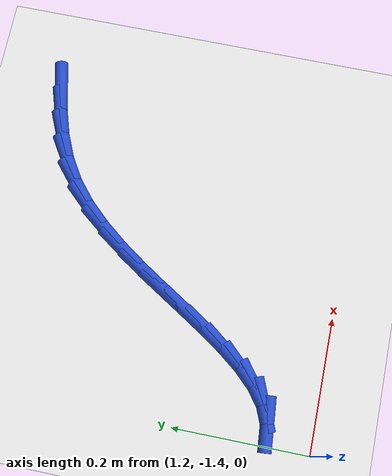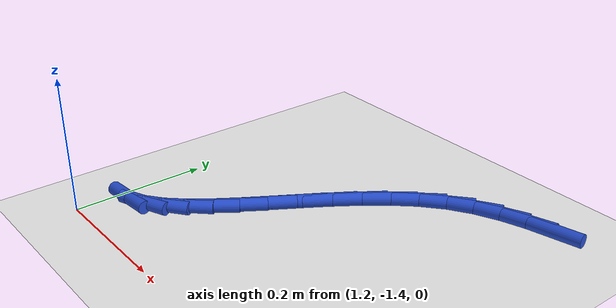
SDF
<sdf version="1.6">
 <world name="default">
  <model name="ground_plane">
   <static>1</static>
   <link name="link">
    <collision name="collision">
     <geometry><plane><normal>0 0 1</normal><size>100 100</size></plane></geometry>
     <surface><friction><ode><mu>100</mu><mu2>50</mu2></ode></friction></surface>
    </collision>
    <visual name="visual">
     <cast_shadows>0</cast_shadows>
     <geometry><plane><normal>0 0 1</normal><size>100 100</size></plane></geometry>
     <material>
      <script><uri>file://media/materials/scripts/gazebo.material</uri><name>Gazebo/WhiteGlow</name></script>
     </material>
    </visual>
   </link>
  </model>
  <model name="line">
   <link name="link_134">
    <pose>1.6741958236816794 -0.9268546247023521 0.01 0 1.57 0.22267690512503957</pose>
    <collision name="collision">
     <geometry><cylinder><radius>0.01</radius><length>0.08</length></cylinder></geometry>
    </collision>
    <visual name="visual">
     <material>
      <script><name>Gazebo/Blue</name><uri>file://media/materials/scripts/gazebo.material</uri></script>
     </material>
     <geometry><cylinder><radius>0.01</radius><length>0.08</length></cylinder></geometry>
    </visual>
   </link>
   <link name="link_135">
    <pose>1.635294663019141 -0.9356630875399009 0.01 0 1.57 0.3042265611885896</pose>
    <collision name="collision">
     <geometry><cylinder><radius>0.01</radius><length>0.08</length></cylinder></geometry>
    </collision>
    <visual name="visual">
     <material>
      <script><name>Gazebo/Blue</name><uri>file://media/materials/scripts/gazebo.material</uri></script>
     </material>
     <geometry><cylinder><radius>0.01</radius><length>0.08</length></cylinder></geometry>
    </visual>
   </link>
   <link name="link_136">
    <pose>1.5976231777479724 -0.9474909294472894 0.01 0 1.57 0.4135611130896034</pose>
    <collision name="collision">
     <geometry><cylinder><radius>0.01</radius><length>0.08</length></cylinder></geometry>
    </collision>
    <visual name="visual">
     <material>
      <script><name>Gazebo/Blue</name><uri>file://media/materials/scripts/gazebo.material</uri></script>
     </material>
     <geometry><cylinder><radius>0.01</radius><length>0.08</length></cylinder></geometry>
    </visual>
   </link>
   <link name="link_137">
    <pose>1.561702453386224 -0.9632555155194557 0.01 0 1.57 0.549748054911484</pose>
    <collision name="collision">
     <geometry><cylinder><radius>0.01</radius><length>0.08</length></cylinder></geometry>
    </collision>
    <visual name="visual">
     <material>
      <script><name>Gazebo/Blue</name><uri>file://media/materials/scripts/gazebo.material</uri></script>
     </material>
     <geometry><cylinder><radius>0.01</radius><length>0.08</length></cylinder></geometry>
    </visual>
   </link>
   <link name="link_138">
    <pose>1.5280535567751243 -0.9838741668393316 0.01 0 1.57 0.69718569354458</pose>
    <collision name="collision">
     <geometry><cylinder><radius>0.01</radius><length>0.08</length></cylinder></geometry>
    </collision>
    <visual name="visual">
     <material>
      <script><name>Gazebo/Blue</name><uri>file://media/materials/scripts/gazebo.material</uri></script>
     </material>
     <geometry><cylinder><radius>0.01</radius><length>0.08</length></cylinder></geometry>
    </visual>
   </link>
   <link name="link_139">
    <pose>1.4970258321875216 -1.009859539587903 0.01 0 1.57 0.8162248239309031</pose>
    <collision name="collision">
     <geometry><cylinder><radius>0.01</radius><length>0.08</length></cylinder></geometry>
    </collision>
    <visual name="visual">
     <material>
      <script><name>Gazebo/Blue</name><uri>file://media/materials/scripts/gazebo.material</uri></script>
     </material>
     <geometry><cylinder><radius>0.01</radius><length>0.08</length></cylinder></geometry>
    </visual>
   </link>
   <link name="link_140">
    <pose>1.4683773854362077 -1.0403310342097385 0.01 0 1.57 0.9030205546458875</pose>
    <collision name="collision">
     <geometry><cylinder><radius>0.01</radius><length>0.08</length></cylinder></geometry>
    </collision>
    <visual name="visual">
     <material>
      <script><name>Gazebo/Blue</name><uri>file://media/materials/scripts/gazebo.material</uri></script>
     </material>
     <geometry><cylinder><radius>0.01</radius><length>0.08</length></cylinder></geometry>
    </visual>
   </link>
   <link name="link_141">
    <pose>1.4417391745355979 -1.0741084268667698 0.01 0 1.57 0.9626008305185465</pose>
    <collision name="collision">
     <geometry><cylinder><radius>0.01</radius><length>0.08</length></cylinder></geometry>
    </collision>
    <visual name="visual">
     <material>
      <script><name>Gazebo/Blue</name><uri>file://media/materials/scripts/gazebo.material</uri></script>
     </material>
     <geometry><cylinder><radius>0.01</radius><length>0.08</length></cylinder></geometry>
    </visual>
   </link>
   <link name="link_142">
    <pose>1.4167421575001051 -1.1100114937209307 0.01 0 1.57 0.9987576472658889</pose>
    <collision name="collision">
     <geometry><cylinder><radius>0.01</radius><length>0.08</length></cylinder></geometry>
    </collision>
    <visual name="visual">
     <material>
      <script><name>Gazebo/Blue</name><uri>file://media/materials/scripts/gazebo.material</uri></script>
     </material>
     <geometry><cylinder><radius>0.01</radius><length>0.08</length></cylinder></geometry>
    </visual>
   </link>
   <link name="link_143">
    <pose>1.3930172923441453 -1.1468600109341527 0.01 0 1.57 1.0134123764937402</pose>
    <collision name="collision">
     <geometry><cylinder><radius>0.01</radius><length>0.08</length></cylinder></geometry>
    </collision>
    <visual name="visual">
     <material>
      <script><name>Gazebo/Blue</name><uri>file://media/materials/scripts/gazebo.material</uri></script>
     </material>
     <geometry><cylinder><radius>0.01</radius><length>0.08</length></cylinder></geometry>
    </visual>
   </link>
   <link name="link_144">
    <pose>1.3701955370821322 -1.1834737546683682 0.01 0 1.57 1.0063253233635536</pose>
    <collision name="collision">
     <geometry><cylinder><radius>0.01</radius><length>0.08</length></cylinder></geometry>
    </collision>
    <visual name="visual">
     <material>
      <script><name>Gazebo/Blue</name><uri>file://media/materials/scripts/gazebo.material</uri></script>
     </material>
     <geometry><cylinder><radius>0.01</radius><length>0.08</length></cylinder></geometry>
    </visual>
   </link>
   <link name="link_145">
    <pose>1.3479078497284809 -1.2186725010855097 0.01 0 1.57 0.9746215323326424</pose>
    <collision name="collision">
     <geometry><cylinder><radius>0.01</radius><length>0.08</length></cylinder></geometry>
    </collision>
    <visual name="visual">
     <material>
      <script><name>Gazebo/Blue</name><uri>file://media/materials/scripts/gazebo.material</uri></script>
     </material>
     <geometry><cylinder><radius>0.01</radius><length>0.08</length></cylinder></geometry>
    </visual>
   </link>
   <link name="link_146">
    <pose>1.3257851882976053 -1.2512760263475091 0.01 0 1.57 0.9118132539878305</pose>
    <collision name="collision">
     <geometry><cylinder><radius>0.01</radius><length>0.08</length></cylinder></geometry>
    </collision>
    <visual name="visual">
     <material>
      <script><name>Gazebo/Blue</name><uri>file://media/materials/scripts/gazebo.material</uri></script>
     </material>
     <geometry><cylinder><radius>0.01</radius><length>0.08</length></cylinder></geometry>
    </visual>
   </link>
   <link name="link_147">
    <pose>1.303458510803921 -1.2801041066163 0.01 0 1.57 0.8061912159950498</pose>
    <collision name="collision">
     <geometry><cylinder><radius>0.01</radius><length>0.08</length></cylinder></geometry>
    </collision>
    <visual name="visual">
     <material>
      <script><name>Gazebo/Blue</name><uri>file://media/materials/scripts/gazebo.material</uri></script>
     </material>
     <geometry><cylinder><radius>0.01</radius><length>0.08</length></cylinder></geometry>
    </visual>
   </link>
   <link name="link_148">
    <pose>1.2805587752618417 -1.303976518053813 0.01 0 1.57 0.6396012513900164</pose>
    <collision name="collision">
     <geometry><cylinder><radius>0.01</radius><length>0.08</length></cylinder></geometry>
    </collision>
    <visual name="visual">
     <material>
      <script><name>Gazebo/Blue</name><uri>file://media/materials/scripts/gazebo.material</uri></script>
     </material>
     <geometry><cylinder><radius>0.01</radius><length>0.08</length></cylinder></geometry>
    </visual>
   </link>
   <link name="link_149">
    <pose>1.2567169396857825 -1.3217130368219823 0.01 0 1.57 0.39275669451910095</pose>
    <collision name="collision">
     <geometry><cylinder><radius>0.01</radius><length>0.08</length></cylinder></geometry>
    </collision>
    <visual name="visual">
     <material>
      <script><name>Gazebo/Blue</name><uri>file://media/materials/scripts/gazebo.material</uri></script>
     </material>
     <geometry><cylinder><radius>0.01</radius><length>0.08</length></cylinder></geometry>
    </visual>
   </link>
   <link name="link_150">
    <pose>1.2315639620901575 -1.3321334390827388 0.01 0 1.57 0.08481516679357934</pose>
    <collision name="collision">
     <geometry><cylinder><radius>0.01</radius><length>0.08</length></cylinder></geometry>
    </collision>
    <visual name="visual">
     <material>
      <script><name>Gazebo/Blue</name><uri>file://media/materials/scripts/gazebo.material</uri></script>
     </material>
     <geometry><cylinder><radius>0.01</radius><length>0.08</length></cylinder></geometry>
    </visual>
   </link>
  </model>
 </world>
</sdf>
